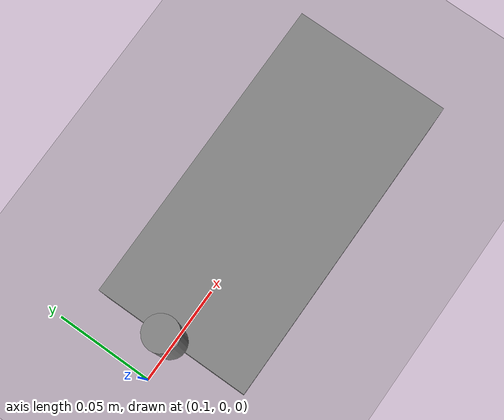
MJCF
<!-- Placeholder geometry. Enough to be a real file with a real hash; not enough
     to be a real scene. Replaced when the SO-101 adapter lands at step 4. -->
<mujoco model="vial_rack">
  <worldbody>
    <geom name="table" type="plane" size="1 1 0.1"/>
    <body name="rack" pos="0.2 0 0">
      <geom name="rack_body" type="box" size="0.08 0.04 0.02"/>
    </body>
    <body name="vial" pos="0.12 0 0.05">
      <freejoint/>
      <geom name="vial_body" type="cylinder" size="0.008 0.03"/>
    </body>
  </worldbody>
</mujoco>
